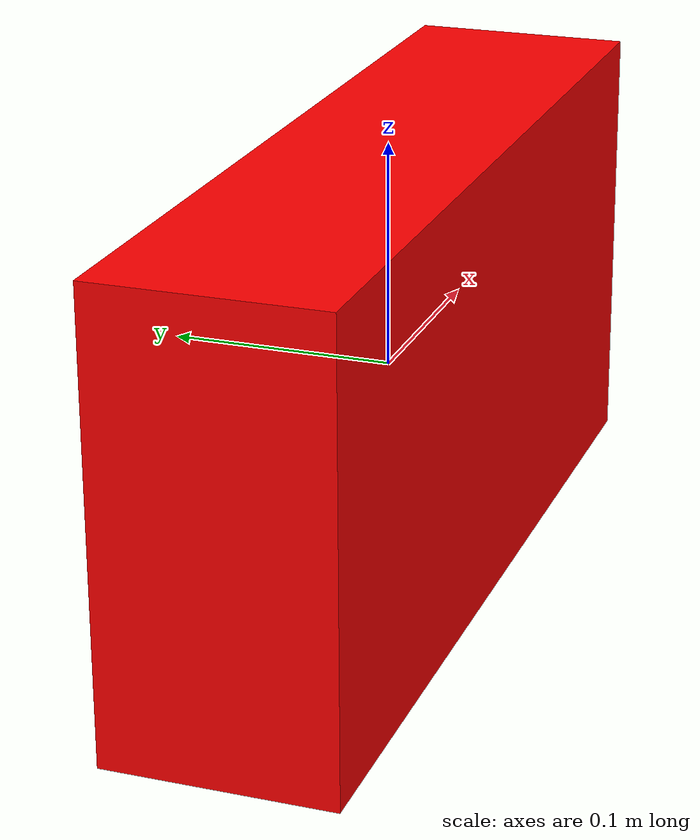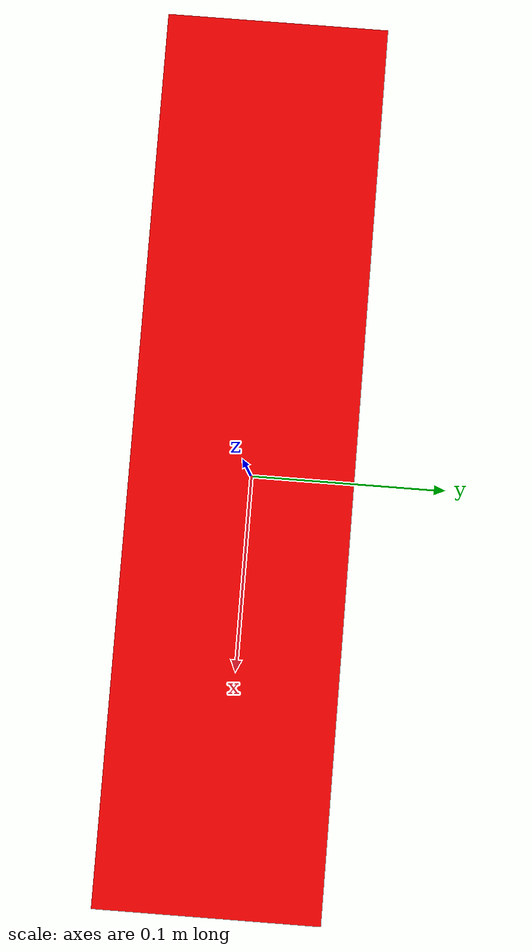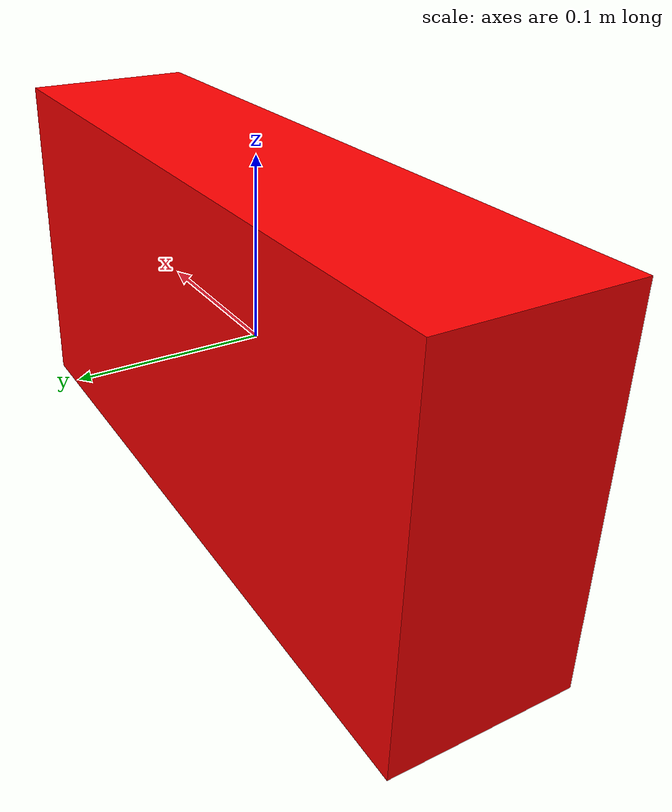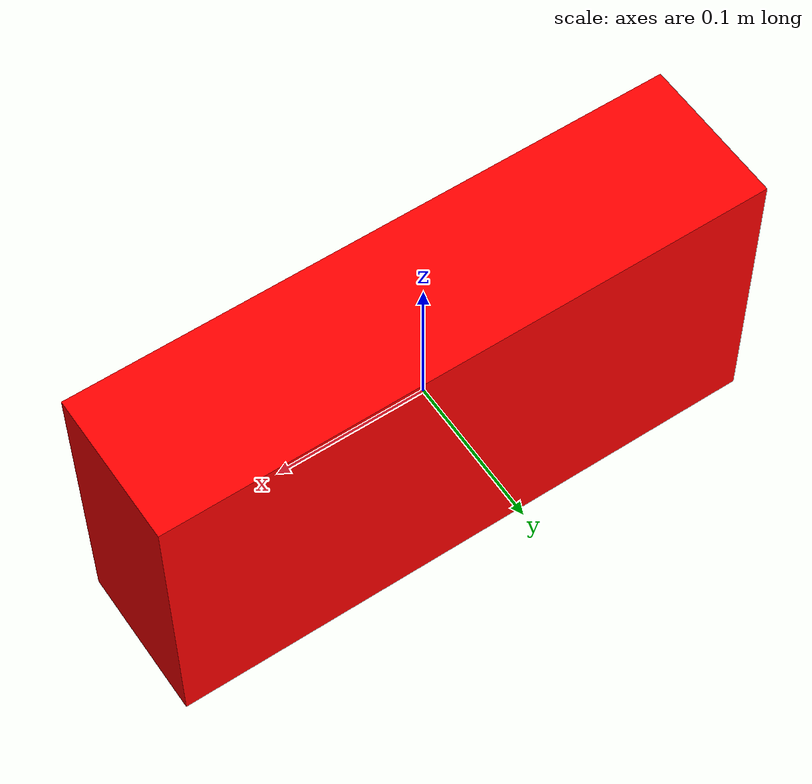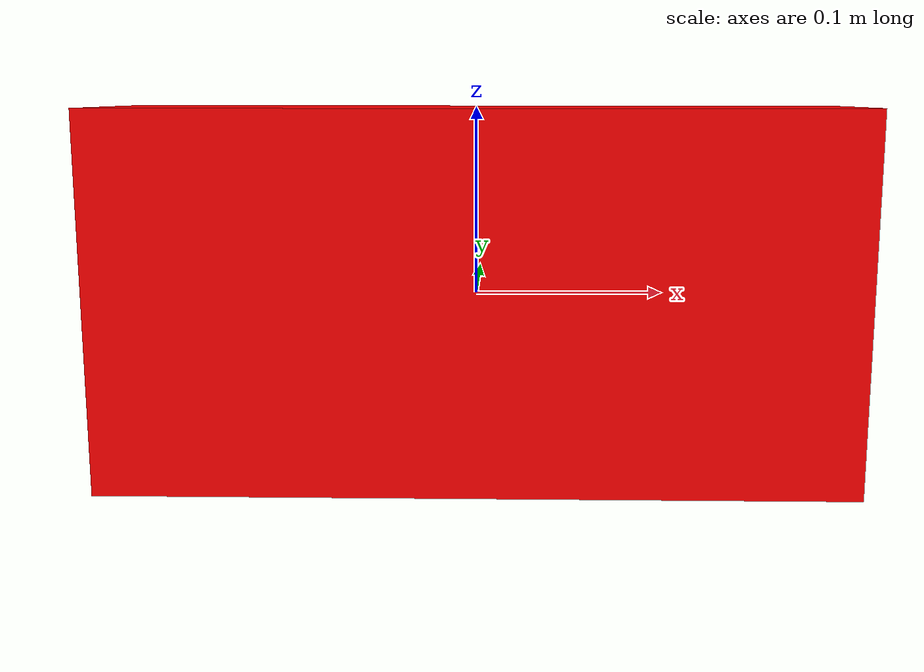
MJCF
<mujoco model="block_control">
  <!-- Set up configuration -->
  <compiler angle="radian" />
  <!-- Specify simulation timestep and gravity vector -->
  <option timestep="0.01" gravity="0 0 -9.81" integrator="implicit"/>

  <asset>
    <texture name="checker" type="2d" builtin="checker" width="512" height="512"
             rgb1="1 1 1" rgb2="0 0 0"/>
    <material name="chess_mat" texture="checker" texrepeat="10 10"/>
  </asset>

  <worldbody>
    <!-- Floor geom to serve as a background for visual reference -->

    <!-- Define the block body -->
    <body name="block" pos="0 0 0">
      <!-- Joint for translation along x -->
      <joint name="slider_x" type="slide" pos="0 0 0" axis="1 0 0"/>
      <!-- Joint for translation along z -->
      <joint name="slider_z" type="slide" pos="0 0 0" axis="0 0 1"/>
      <!-- Joint for rotation about y (theta) -->
      <joint name="hinge_y" type="hinge" pos="0 0 0" axis="0 1 0"/>

      <geom mass="1" name="block_geom" type="box" size="0.2 0.05 0.1" rgba="1 0 0 1"/>
    </body>
  </worldbody>

</mujoco>
